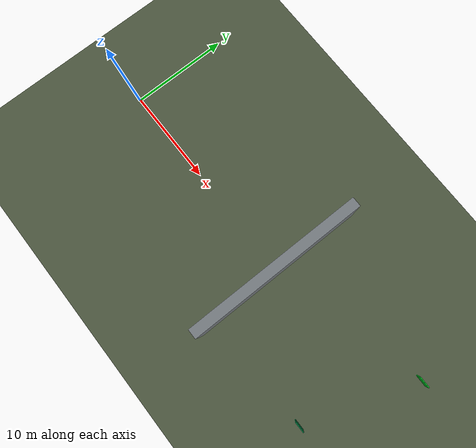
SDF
<?xml version="1.0"?>
<sdf version="1.10">
  <world name="jneo_fpv_training">
    <gravity>0 0 -9.80665</gravity>
    <scene>
      <ambient>0.45 0.45 0.45 1</ambient>
      <background>0.72 0.78 0.84 1</background>
      <shadows>true</shadows>
    </scene>
    <physics name="deterministic_physics" type="ode">
      <max_step_size>0.004</max_step_size>
      <real_time_factor>1.0</real_time_factor>
    </physics>
    <light name="sun_key" type="directional">
      <pose>0 0 10 0.3 0.2 0</pose>
      <diffuse>0.9 0.86 0.76 1</diffuse>
      <direction>-0.4 0.2 -1</direction>
    </light>
    <model name="terrain">
      <static>true</static>
      <link name="ground">
        <collision name="collision">
          <geometry>
            <plane>
              <normal>0 0 1</normal>
              <size>220 220</size>
            </plane>
          </geometry>
        </collision>
        <visual name="visual">
          <geometry>
            <plane>
              <normal>0 0 1</normal>
              <size>220 220</size>
            </plane>
          </geometry>
          <material>
            <ambient>0.29 0.33 0.24 1</ambient>
            <diffuse>0.29 0.33 0.24 1</diffuse>
          </material>
        </visual>
      </link>
    </model>
    <model name="occlusion_wall">
      <pose>22 0 2.5 0 0 0</pose>
      <static>true</static>
      <link name="wall">
        <collision name="collision">
          <geometry>
            <box>
              <size>1.0 18.0 5.0</size>
            </box>
          </geometry>
        </collision>
        <visual name="visual">
          <geometry>
            <box>
              <size>1.0 18.0 5.0</size>
            </box>
          </geometry>
          <material>
            <ambient>0.45 0.47 0.49 1</ambient>
            <diffuse>0.45 0.47 0.49 1</diffuse>
          </material>
        </visual>
      </link>
    </model>
    <include>
      <name>uav_1</name>
      <pose>0 0 0.15 0 0 0</pose>
      <uri>model://jneo-fpv-copter</uri>
    </include>
    <include>
      <name>target_1</name>
      <pose>38 4 1.0 0 0 3.14159</pose>
      <uri>model://virtual-observation-target</uri>
    </include>
    <include>
      <name>decoy_1</name>
      <pose>34 -7 1.0 0 0 3.14159</pose>
      <uri>model://visual-decoy</uri>
    </include>
    <!-- Evaluator-only metadata: target_1 active, decoy_1 non-scoring, no-go region x=[15,20], y=[-8,8]. -->
  </world>
</sdf>

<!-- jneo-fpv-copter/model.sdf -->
<sdf version="1.10">
  <model name="jneo-fpv-copter">
    <pose>0 0 0.15 0 0 0</pose>
    <link name="base_link">
      <inertial>
        <mass>1.45</mass>
        <inertia>
          <ixx>0.029</ixx>
          <iyy>0.029</iyy>
          <izz>0.055</izz>
        </inertia>
      </inertial>
      <collision name="body_collision">
        <geometry>
          <box>
            <size>0.35 0.22 0.08</size>
          </box>
        </geometry>
      </collision>
      <visual name="body_visual">
        <geometry>
          <box>
            <size>0.35 0.22 0.08</size>
          </box>
        </geometry>
        <material>
          <ambient>0.05 0.08 0.10 1</ambient>
          <diffuse>0.05 0.08 0.10 1</diffuse>
        </material>
      </visual>
      <sensor name="fpv_camera" type="camera">
        <pose>0.22 0 0.03 0 0 0</pose>
        <camera>
          <horizontal_fov>1.22173</horizontal_fov>
          <image>
            <width>960</width>
            <height>540</height>
            <format>R8G8B8</format>
          </image>
          <clip>
            <near>0.05</near>
            <far>500</far>
          </clip>
        </camera>
        <always_on>true</always_on>
        <update_rate>30</update_rate>
        <topic>fpv/image</topic>
      </sensor>
      <sensor name="imu" type="imu">
        <always_on>true</always_on>
        <update_rate>200</update_rate>
        <topic>imu</topic>
      </sensor>
      <sensor name="range" type="gpu_lidar">
        <pose>0.18 0 -0.02 0 0 0</pose>
        <topic>range/scan</topic>
        <update_rate>15</update_rate>
        <lidar>
          <scan>
            <horizontal>
              <samples>64</samples>
              <min_angle>-0.6</min_angle>
              <max_angle>0.6</max_angle>
            </horizontal>
          </scan>
          <range>
            <min>0.2</min>
            <max>30.0</max>
          </range>
        </lidar>
      </sensor>
    </link>
    <plugin filename="ArduPilotPlugin" name="ardupilot_gazebo::ArduPilotPlugin">
      <fdm_addr>127.0.0.1</fdm_addr>
      <fdm_port_in>9002</fdm_port_in>
      <fdm_port_out>9003</fdm_port_out>
      <modelXYZToAirplaneXForwardZDown>0 0 0 3.141593 0 0</modelXYZToAirplaneXForwardZDown>
      <gazeboXYZToNED>0 0 0 3.141593 0 1.570796</gazeboXYZToNED>
    </plugin>
  </model>
</sdf>

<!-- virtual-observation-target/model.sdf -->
<sdf version="1.10">
  <model name="virtual-observation-target">
    <static>true</static>
    <link name="target_panel">
      <visual name="target_pattern">
        <geometry>
          <box>
            <size>1.2 0.08 1.2</size>
          </box>
        </geometry>
        <material>
          <ambient>0.0 0.85 0.15 1</ambient>
          <diffuse>0.0 0.85 0.15 1</diffuse>
          <specular>0.8 0.8 0.8 1</specular>
        </material>
      </visual>
      <collision name="target_collision">
        <geometry>
          <box>
            <size>1.2 0.08 1.2</size>
          </box>
        </geometry>
      </collision>
    </link>
  </model>
</sdf>

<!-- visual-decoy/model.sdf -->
<sdf version="1.10">
  <model name="visual-decoy">
    <static>true</static>
    <link name="decoy_panel">
      <visual name="decoy_pattern">
        <geometry>
          <box>
            <size>1.1 0.08 1.1</size>
          </box>
        </geometry>
        <material>
          <ambient>0.0 0.55 0.28 1</ambient>
          <diffuse>0.0 0.55 0.28 1</diffuse>
        </material>
      </visual>
      <collision name="decoy_collision">
        <geometry>
          <box>
            <size>1.1 0.08 1.1</size>
          </box>
        </geometry>
      </collision>
    </link>
  </model>
</sdf>
